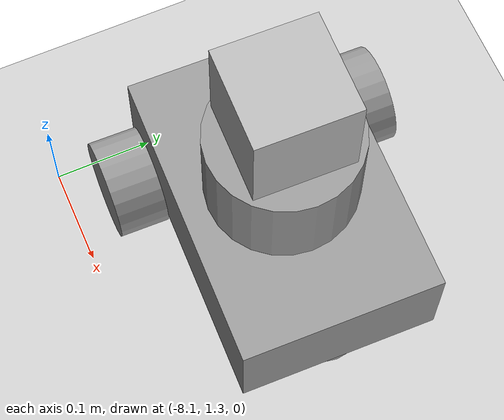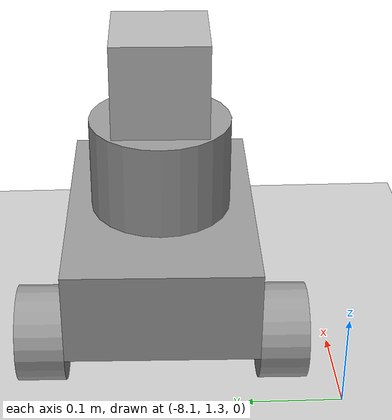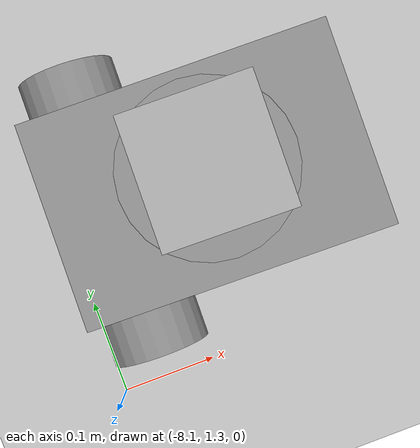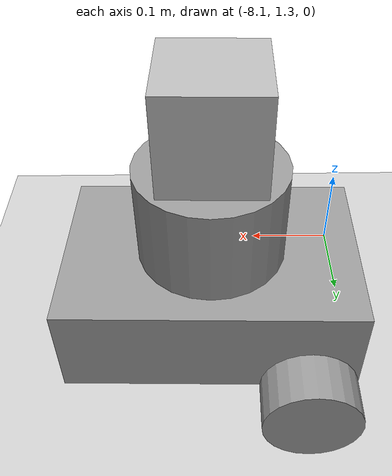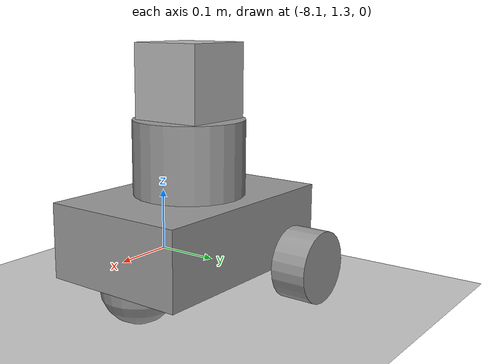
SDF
<sdf version="1.6">
 <world name="default">
  <model name="ground_plane">
   <static>1</static>
   <link name="link">
    <collision name="collision">
     <geometry><plane><normal>0 0 1</normal><size>100 100</size></plane></geometry>
     <surface>
      <contact><collide_bitmask>65535</collide_bitmask></contact>
      <friction><ode><mu>100</mu><mu2>50</mu2></ode></friction>
     </surface>
    </collision>
    <visual name="visual">
     <cast_shadows>0</cast_shadows>
     <geometry><plane><normal>0 0 1</normal><size>100 100</size></plane></geometry>
     <material>
      <script><uri>file://media/materials/scripts/gazebo.material</uri><name>Gazebo/Grey</name></script>
     </material>
    </visual>
   </link>
  </model>
  <model name="test_robot">
   <link name="link_0">
    <pose>0.021878 2.7e-05 0.011 0 -0 0</pose>
    <inertial>
     <mass>1</mass>
     <inertia>
      <ixx>0.166667</ixx>
      <ixy>0</ixy>
      <ixz>0</ixz>
      <iyy>0.166667</iyy>
      <iyz>0</iyz>
      <izz>0.166667</izz>
     </inertia>
    </inertial>
    <visual name="visual">
     <geometry><box><size>0.3 0.2 0.1</size></box></geometry>
     <material>
      <lighting>1</lighting>
      <script><uri>file://media/materials/scripts/gazebo.material</uri><name>Gazebo/Grey</name></script>
      <shader type="pixel"><normal_map>__default__</normal_map></shader>
      <ambient>0.3 0.3 0.3 1</ambient>
      <diffuse>0.7 0.7 0.7 1</diffuse>
      <specular>0.01 0.01 0.01 1</specular>
      <emissive>0 0 0 1</emissive>
     </material>
    </visual>
    <collision name="collision">
     <geometry><box><size>0.3 0.2 0.1</size></box></geometry>
     <surface>
      <friction>
       <ode><mu>1</mu><mu2>1</mu2><fdir1>0 0 0</fdir1><slip1>0</slip1><slip2>0</slip2></ode>
       <torsional>
        <coefficient>1</coefficient>
        <patch_radius>0</patch_radius>
        <surface_radius>0</surface_radius>
        <use_patch_radius>1</use_patch_radius>
        <ode><slip>0</slip></ode>
       </torsional>
      </friction>
      <bounce><restitution_coefficient>0</restitution_coefficient><threshold>1e+06</threshold></bounce>
      <contact>
       <collide_without_contact>0</collide_without_contact>
       <collide_without_contact_bitmask>1</collide_without_contact_bitmask>
       <collide_bitmask>1</collide_bitmask>
       <ode>
        <soft_cfm>0</soft_cfm>
        <soft_erp>0.2</soft_erp>
        <kp>1e+13</kp>
        <kd>1</kd>
        <max_vel>0.01</max_vel>
        <min_depth>0</min_depth>
       </ode>
       <bullet>
        <split_impulse>1</split_impulse>
        <split_impulse_penetration_threshold>-0.01</split_impulse_penetration_threshold>
        <soft_cfm>0</soft_cfm>
        <soft_erp>0.2</soft_erp>
        <kp>1e+13</kp>
        <kd>1</kd>
       </bullet>
      </contact>
     </surface>
    </collision>
   </link>
   <link name="link_1">
    <pose>-0.078122 0.125027 -0.039 1.5707 -0 0</pose>
    <inertial>
     <mass>1</mass>
     <inertia><ixx>0.145833</ixx><ixy>0</ixy><ixz>0</ixz><iyy>0.145833</iyy><iyz>0</iyz><izz>0.125</izz></inertia>
    </inertial>
    <visual name="visual">
     <geometry><cylinder><radius>0.05</radius><length>0.05</length></cylinder></geometry>
     <material>
      <lighting>1</lighting>
      <script><uri>file://media/materials/scripts/gazebo.material</uri><name>Gazebo/Grey</name></script>
      <shader type="pixel"><normal_map>__default__</normal_map></shader>
      <ambient>0.3 0.3 0.3 1</ambient>
      <diffuse>0.7 0.7 0.7 1</diffuse>
      <specular>0.01 0.01 0.01 1</specular>
      <emissive>0 0 0 1</emissive>
     </material>
    </visual>
    <collision name="collision">
     <geometry><cylinder><radius>0.05</radius><length>0.05</length></cylinder></geometry>
     <surface>
      <friction>
       <ode><mu>1</mu><mu2>1</mu2><fdir1>0 0 0</fdir1><slip1>0</slip1><slip2>0</slip2></ode>
       <torsional>
        <coefficient>1</coefficient>
        <patch_radius>0</patch_radius>
        <surface_radius>0</surface_radius>
        <use_patch_radius>1</use_patch_radius>
        <ode><slip>0</slip></ode>
       </torsional>
      </friction>
      <bounce><restitution_coefficient>0</restitution_coefficient><threshold>1e+06</threshold></bounce>
      <contact>
       <collide_without_contact>0</collide_without_contact>
       <collide_without_contact_bitmask>1</collide_without_contact_bitmask>
       <collide_bitmask>1</collide_bitmask>
       <ode>
        <soft_cfm>0</soft_cfm>
        <soft_erp>0.2</soft_erp>
        <kp>1e+13</kp>
        <kd>1</kd>
        <max_vel>0.01</max_vel>
        <min_depth>0</min_depth>
       </ode>
       <bullet>
        <split_impulse>1</split_impulse>
        <split_impulse_penetration_threshold>-0.01</split_impulse_penetration_threshold>
        <soft_cfm>0</soft_cfm>
        <soft_erp>0.2</soft_erp>
        <kp>1e+13</kp>
        <kd>1</kd>
       </bullet>
      </contact>
     </surface>
    </collision>
   </link>
   <link name="link_1_clone">
    <pose>-0.078122 -0.124973 -0.039 1.5707 -0 0</pose>
    <inertial>
     <mass>1</mass>
     <inertia><ixx>0.145833</ixx><ixy>0</ixy><ixz>0</ixz><iyy>0.145833</iyy><iyz>0</iyz><izz>0.125</izz></inertia>
    </inertial>
    <visual name="visual">
     <geometry><cylinder><radius>0.05</radius><length>0.05</length></cylinder></geometry>
     <material>
      <lighting>1</lighting>
      <script><uri>file://media/materials/scripts/gazebo.material</uri><name>Gazebo/Grey</name></script>
      <shader type="pixel"><normal_map>__default__</normal_map></shader>
      <ambient>0.3 0.3 0.3 1</ambient>
      <diffuse>0.7 0.7 0.7 1</diffuse>
      <specular>0.01 0.01 0.01 1</specular>
      <emissive>0 0 0 1</emissive>
     </material>
    </visual>
    <collision name="collision">
     <geometry><cylinder><radius>0.05</radius><length>0.05</length></cylinder></geometry>
     <surface>
      <friction>
       <ode><mu>1</mu><mu2>1</mu2><fdir1>0 0 0</fdir1><slip1>0</slip1><slip2>0</slip2></ode>
       <torsional>
        <coefficient>1</coefficient>
        <patch_radius>0</patch_radius>
        <surface_radius>0</surface_radius>
        <use_patch_radius>1</use_patch_radius>
        <ode><slip>0</slip></ode>
       </torsional>
      </friction>
      <bounce><restitution_coefficient>0</restitution_coefficient><threshold>1e+06</threshold></bounce>
      <contact>
       <collide_without_contact>0</collide_without_contact>
       <collide_without_contact_bitmask>1</collide_without_contact_bitmask>
       <collide_bitmask>1</collide_bitmask>
       <ode>
        <soft_cfm>0</soft_cfm>
        <soft_erp>0.2</soft_erp>
        <kp>1e+13</kp>
        <kd>1</kd>
        <max_vel>0.01</max_vel>
        <min_depth>0</min_depth>
       </ode>
       <bullet>
        <split_impulse>1</split_impulse>
        <split_impulse_penetration_threshold>-0.01</split_impulse_penetration_threshold>
        <soft_cfm>0</soft_cfm>
        <soft_erp>0.2</soft_erp>
        <kp>1e+13</kp>
        <kd>1</kd>
       </bullet>
      </contact>
     </surface>
    </collision>
   </link>
   <link name="link_2">
    <pose>0.121878 2.7e-05 -0.039 0 -0 0</pose>
    <inertial>
     <mass>1</mass>
     <inertia><ixx>0.1</ixx><ixy>0</ixy><ixz>0</ixz><iyy>0.1</iyy><iyz>0</iyz><izz>0.1</izz></inertia>
    </inertial>
    <visual name="visual">
     <geometry><sphere><radius>0.05</radius></sphere></geometry>
     <material>
      <lighting>1</lighting>
      <script><uri>file://media/materials/scripts/gazebo.material</uri><name>Gazebo/Grey</name></script>
      <shader type="pixel"><normal_map>__default__</normal_map></shader>
      <ambient>0.3 0.3 0.3 1</ambient>
      <diffuse>0.7 0.7 0.7 1</diffuse>
      <specular>0.01 0.01 0.01 1</specular>
      <emissive>0 0 0 1</emissive>
     </material>
    </visual>
    <collision name="collision">
     <geometry><sphere><radius>0.05</radius></sphere></geometry>
     <surface>
      <friction>
       <ode><mu>1</mu><mu2>1</mu2><fdir1>0 0 0</fdir1><slip1>0</slip1><slip2>0</slip2></ode>
       <torsional>
        <coefficient>1</coefficient>
        <patch_radius>0</patch_radius>
        <surface_radius>0</surface_radius>
        <use_patch_radius>1</use_patch_radius>
        <ode><slip>0</slip></ode>
       </torsional>
      </friction>
      <bounce><restitution_coefficient>0</restitution_coefficient><threshold>1e+06</threshold></bounce>
      <contact>
       <collide_without_contact>0</collide_without_contact>
       <collide_without_contact_bitmask>1</collide_without_contact_bitmask>
       <collide_bitmask>1</collide_bitmask>
       <ode>
        <soft_cfm>0</soft_cfm>
        <soft_erp>0.2</soft_erp>
        <kp>1e+13</kp>
        <kd>1</kd>
        <max_vel>0.01</max_vel>
        <min_depth>0</min_depth>
       </ode>
       <bullet>
        <split_impulse>1</split_impulse>
        <split_impulse_penetration_threshold>-0.01</split_impulse_penetration_threshold>
        <soft_cfm>0</soft_cfm>
        <soft_erp>0.2</soft_erp>
        <kp>1e+13</kp>
        <kd>1</kd>
       </bullet>
      </contact>
     </surface>
    </collision>
   </link>
   <link name="link_3">
    <pose>0.021878 2.7e-05 0.111 0 -0 0</pose>
    <inertial>
     <mass>1</mass>
     <inertia><ixx>0.145833</ixx><ixy>0</ixy><ixz>0</ixz><iyy>0.145833</iyy><iyz>0</iyz><izz>0.125</izz></inertia>
    </inertial>
    <visual name="visual">
     <geometry><cylinder><radius>0.075</radius><length>0.1</length></cylinder></geometry>
     <material>
      <lighting>1</lighting>
      <script><uri>file://media/materials/scripts/gazebo.material</uri><name>Gazebo/Grey</name></script>
      <shader type="pixel"><normal_map>__default__</normal_map></shader>
      <ambient>0.3 0.3 0.3 1</ambient>
      <diffuse>0.7 0.7 0.7 1</diffuse>
      <specular>0.01 0.01 0.01 1</specular>
      <emissive>0 0 0 1</emissive>
     </material>
    </visual>
    <collision name="collision">
     <geometry><cylinder><radius>0.075</radius><length>0.1</length></cylinder></geometry>
     <surface>
      <friction>
       <ode><mu>1</mu><mu2>1</mu2><fdir1>0 0 0</fdir1><slip1>0</slip1><slip2>0</slip2></ode>
       <torsional>
        <coefficient>1</coefficient>
        <patch_radius>0</patch_radius>
        <surface_radius>0</surface_radius>
        <use_patch_radius>1</use_patch_radius>
        <ode><slip>0</slip></ode>
       </torsional>
      </friction>
      <bounce><restitution_coefficient>0</restitution_coefficient><threshold>1e+06</threshold></bounce>
      <contact>
       <collide_without_contact>0</collide_without_contact>
       <collide_without_contact_bitmask>1</collide_without_contact_bitmask>
       <collide_bitmask>1</collide_bitmask>
       <ode>
        <soft_cfm>0</soft_cfm>
        <soft_erp>0.2</soft_erp>
        <kp>1e+13</kp>
        <kd>1</kd>
        <max_vel>0.01</max_vel>
        <min_depth>0</min_depth>
       </ode>
       <bullet>
        <split_impulse>1</split_impulse>
        <split_impulse_penetration_threshold>-0.01</split_impulse_penetration_threshold>
        <soft_cfm>0</soft_cfm>
        <soft_erp>0.2</soft_erp>
        <kp>1e+13</kp>
        <kd>1</kd>
       </bullet>
      </contact>
     </surface>
    </collision>
   </link>
   <model name="depth_camera">
    <link name="link">
     <pose>0 0 0.05 0 -0 0</pose>
     <inertial>
      <mass>0.1</mass>
      <inertia>
       <ixx>0.000166667</ixx>
       <iyy>0.000166667</iyy>
       <izz>0.000166667</izz>
       <ixy>0</ixy>
       <ixz>0</ixz>
       <iyz>0</iyz>
      </inertia>
     </inertial>
     <collision name="collision"><geometry><box><size>0.1 0.1 0.1</size></box></geometry></collision>
     <visual name="visual"><geometry><box><size>0.1 0.1 0.1</size></box></geometry></visual>
     <sensor name="camera" type="depth">
      <camera name="__default__">
       <horizontal_fov>1.047</horizontal_fov>
       <image><width>320</width><height>240</height></image>
       <clip><near>0.1</near><far>100</far></clip>
      </camera>
      <always_on>1</always_on>
      <update_rate>30</update_rate>
      <visualize>1</visualize>
     </sensor>
    </link>
    <pose>0.020611 -0.000134 0.159999 0 -0 0</pose>
   </model>
   <joint name="link_0_JOINT_0" type="revolute">
    <parent>link_0</parent>
    <child>link_1</child>
    <axis>
     <xyz>0 0 1</xyz>
     <use_parent_model_frame>0</use_parent_model_frame>
     <limit>
      <lower>-1.79769e+308</lower>
      <upper>1.79769e+308</upper>
      <effort>-1</effort>
      <velocity>-1</velocity>
     </limit>
     <dynamics>
      <spring_reference>0</spring_reference>
      <spring_stiffness>0</spring_stiffness>
      <damping>0</damping>
     </dynamics>
    </axis>
    <physics>
     <ode><limit><cfm>0</cfm><erp>0.2</erp></limit><suspension><cfm>0</cfm><erp>0.2</erp></suspension></ode>
    </physics>
   </joint>
   <joint name="link_0_JOINT_1" type="revolute">
    <parent>link_0</parent>
    <child>link_1_clone</child>
    <axis>
     <xyz>0 0 1</xyz>
     <use_parent_model_frame>0</use_parent_model_frame>
     <limit>
      <lower>-1.79769e+308</lower>
      <upper>1.79769e+308</upper>
      <effort>-1</effort>
      <velocity>-1</velocity>
     </limit>
     <dynamics>
      <spring_reference>0</spring_reference>
      <spring_stiffness>0</spring_stiffness>
      <damping>0</damping>
     </dynamics>
    </axis>
    <physics>
     <ode><limit><cfm>0</cfm><erp>0.2</erp></limit><suspension><cfm>0</cfm><erp>0.2</erp></suspension></ode>
    </physics>
   </joint>
   <joint name="link_0_JOINT_3" type="ball">
    <parent>link_0</parent>
    <child>link_2</child>
    <physics>
     <ode><limit><cfm>0</cfm><erp>0.2</erp></limit><suspension><cfm>0</cfm><erp>0.2</erp></suspension></ode>
    </physics>
   </joint>
   <joint name="link_0_JOINT_4" type="fixed">
    <parent>link_0</parent>
    <child>link_3</child>
    <physics>
     <ode><limit><cfm>0</cfm><erp>0.2</erp></limit><suspension><cfm>0</cfm><erp>0.2</erp></suspension></ode>
    </physics>
   </joint>
   <joint name="link_3_JOINT_6" type="fixed">
    <parent>link_3</parent>
    <child>depth_camera::link</child>
    <physics>
     <ode><limit><cfm>0</cfm><erp>0.2</erp></limit><suspension><cfm>0</cfm><erp>0.2</erp></suspension></ode>
    </physics>
   </joint>
   <static>0</static>
   <pose>-7.96202 1.48221 0.089001 -2e-06 1.2e-05 -0.024215</pose>
  </model>
 </world>
</sdf>
